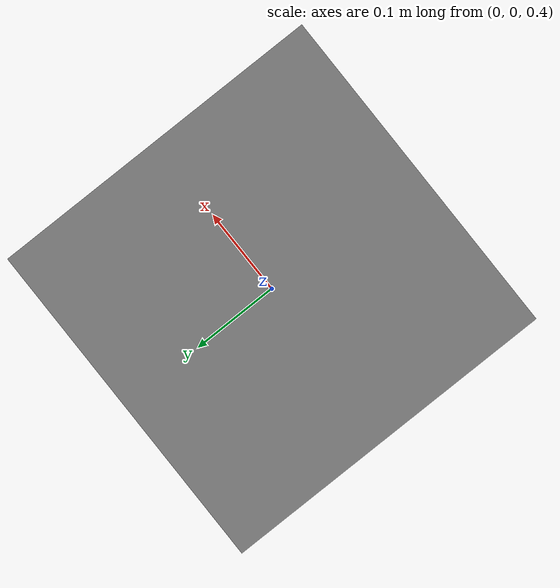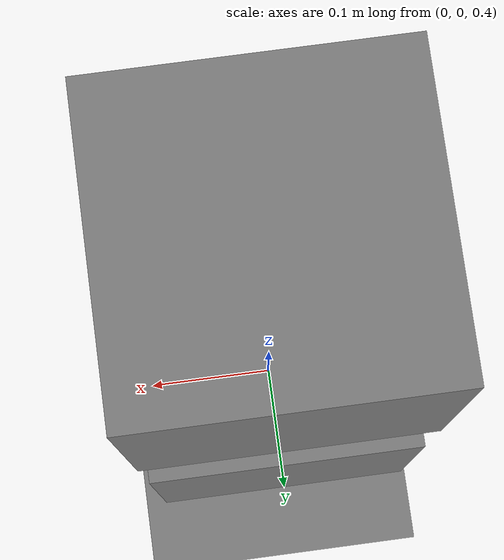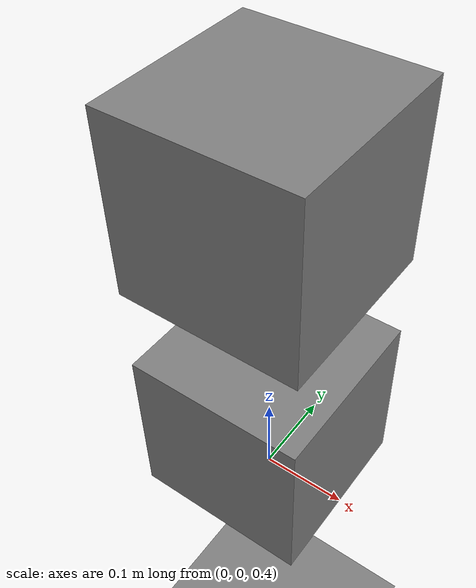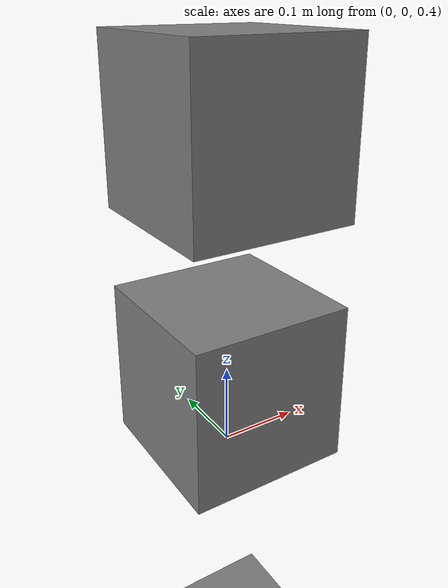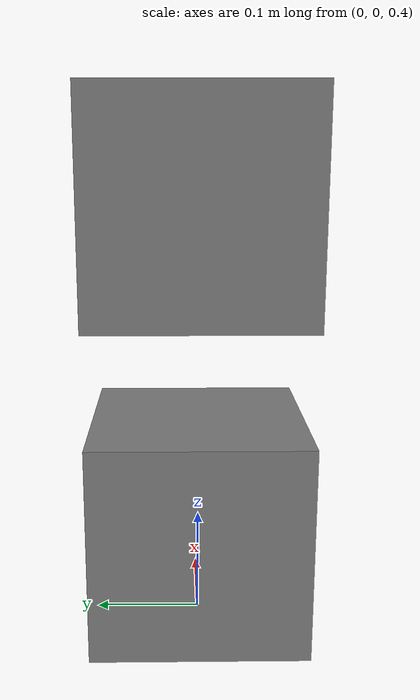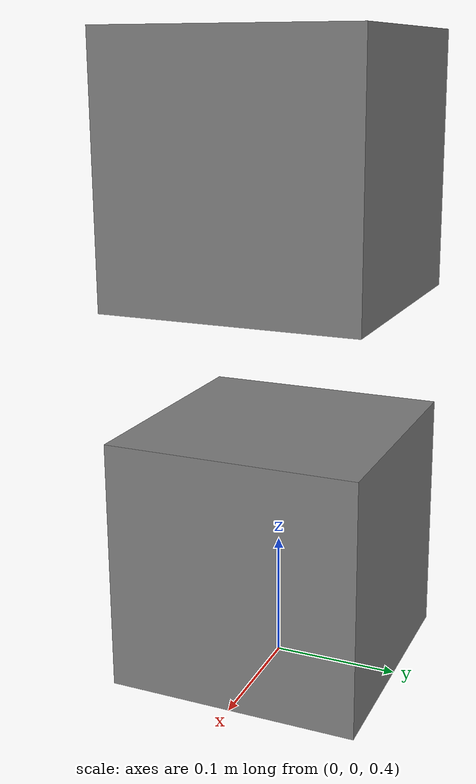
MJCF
<mujoco model="stacked">
  <option gravity="0 0 -9.81" timestep="0.002" sleep_tolerance="1e-6">
    <flag sleep="enable"/>
  </option>
  <worldbody>
    <geom type="plane" size="5 5 0.1" solref="0.005 1.5"/>
    <body name="bottom" pos="0 0 0.5">
      <freejoint/>
      <geom type="box" size="0.1 0.1 0.1" mass="1.0" solref="0.005 1.5"/>
    </body>
    <body name="top" pos="0 0 0.8">
      <freejoint/>
      <geom type="box" size="0.1 0.1 0.1" mass="1.0" solref="0.005 1.5"/>
    </body>
  </worldbody>
</mujoco>
